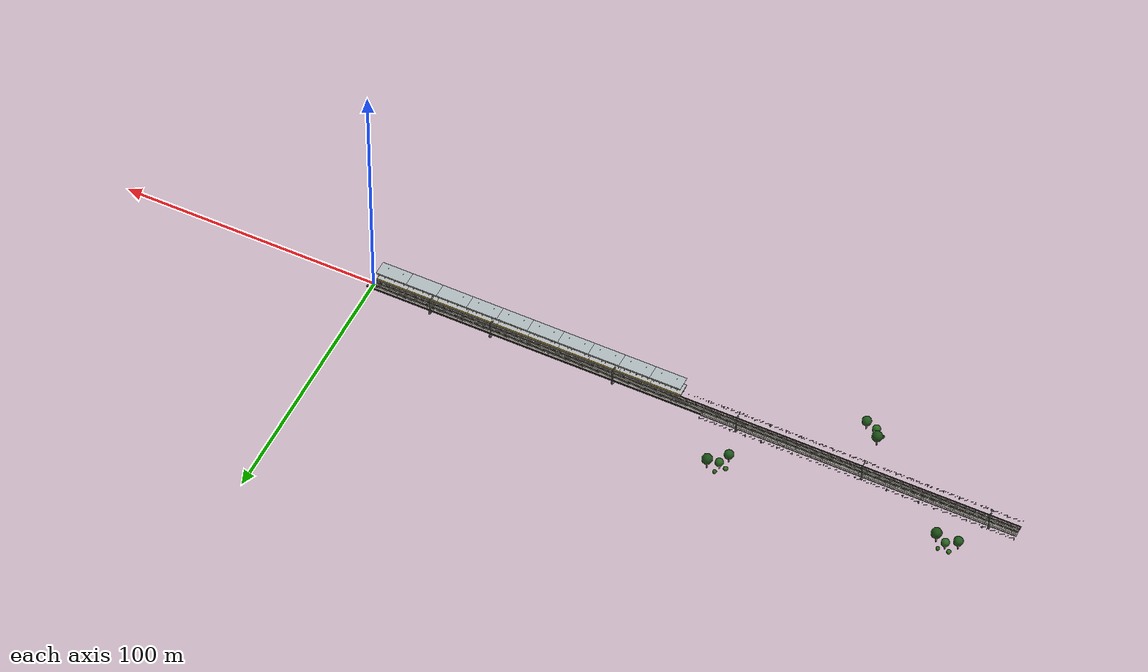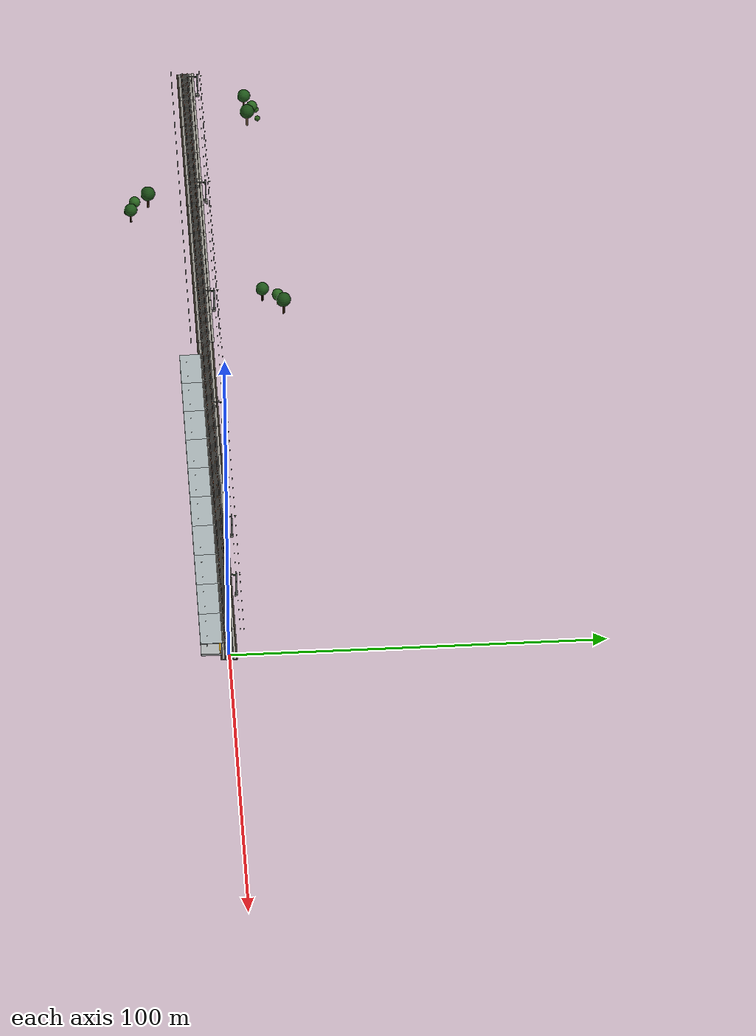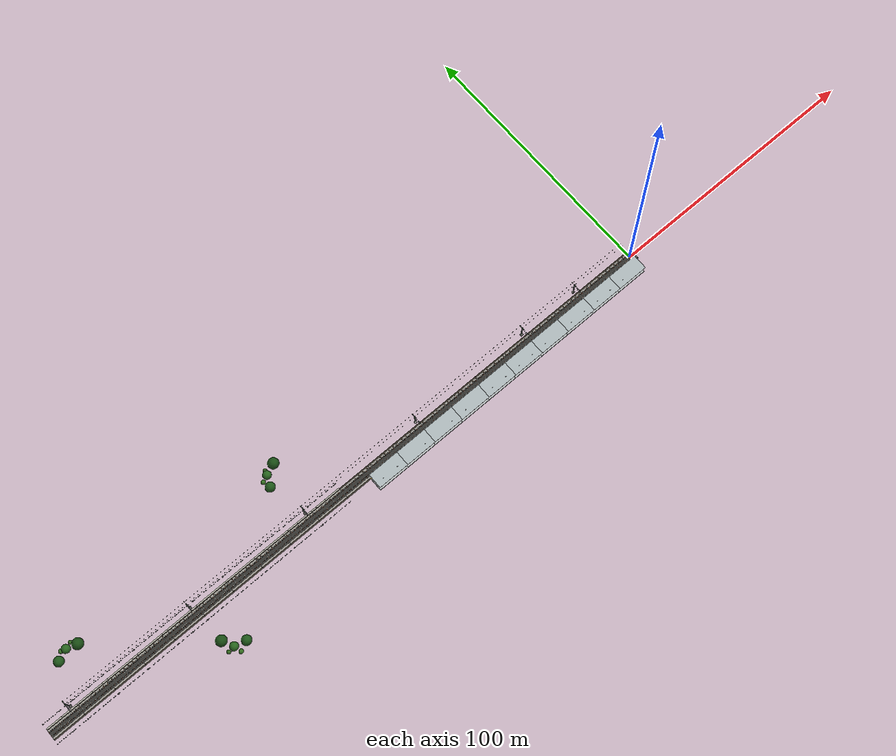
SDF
<sdf version="1.9">
 <world name="railway_environment">
  <include><uri>model://track_12m</uri><name>track_00</name><pose>-244 0 0 0 0 0</pose></include>
  <include><uri>model://track_12m</uri><name>track_01</name><pose>-232 0 0 0 0 0</pose></include>
  <include><uri>model://track_12m</uri><name>track_02</name><pose>-220 0 0 0 0 0</pose></include>
  <include><uri>model://track_12m</uri><name>track_03</name><pose>-208 0 0 0 0 0</pose></include>
  <include><uri>model://track_12m</uri><name>track_04</name><pose>-196 0 0 0 0 0</pose></include>
  <include><uri>model://track_12m</uri><name>track_05</name><pose>-184 0 0 0 0 0</pose></include>
  <include><uri>model://track_12m</uri><name>track_06</name><pose>-172 0 0 0 0 0</pose></include>
  <include><uri>model://track_12m</uri><name>track_07</name><pose>-160 0 0 0 0 0</pose></include>
  <include><uri>model://track_12m</uri><name>track_08</name><pose>-148 0 0 0 0 0</pose></include>
  <include><uri>model://track_12m</uri><name>track_09</name><pose>-136 0 0 0 0 0</pose></include>
  <include><uri>model://track_12m</uri><name>track_10</name><pose>-124 0 0 0 0 0</pose></include>
  <include><uri>model://track_12m</uri><name>track_11</name><pose>-112 0 0 0 0 0</pose></include>
  <include><uri>model://track_12m</uri><name>track_12</name><pose>-100 0 0 0 0 0</pose></include>
  <include><uri>model://track_12m</uri><name>track_13</name><pose>-88 0 0 0 0 0</pose></include>
  <include><uri>model://track_12m</uri><name>track_14</name><pose>-76 0 0 0 0 0</pose></include>
  <include><uri>model://track_12m</uri><name>track_15</name><pose>-64 0 0 0 0 0</pose></include>
  <include><uri>model://track_12m</uri><name>track_16</name><pose>-52 0 0 0 0 0</pose></include>
  <include><uri>model://track_12m</uri><name>track_17</name><pose>-40 0 0 0 0 0</pose></include>
  <include><uri>model://track_12m</uri><name>track_18</name><pose>-28 0 0 0 0 0</pose></include>
  <include><uri>model://track_12m</uri><name>track_19</name><pose>-16 0 0 0 0 0</pose></include>
  <include><uri>model://track_12m</uri><name>track_20</name><pose>-4 0 0 0 0 0</pose></include>
  <include><uri>model://catenary_span_96m</uri><name>ocs_tangent_00</name><pose>-192 0 0 0 0 0</pose></include>
  <include><uri>model://catenary_span_96m</uri><name>ocs_tangent_01</name><pose>-96 0 0 0 0 0</pose></include>
  <include><uri>model://catenary_span_24m</uri><name>ocs_tangent_02</name><pose>-36 0 0 0 0 0</pose></include>
  <include><uri>model://catenary_span_24m</uri><name>ocs_tangent_03</name><pose>-12 0 0 0 0 0</pose></include>
  <include>
   <uri>model://railside_infrastructure_12m</uri>
   <name>infra_00</name>
   <pose>-244 0 0 0 0 0</pose>
  </include>
  <include>
   <uri>model://railside_infrastructure_12m</uri>
   <name>infra_01</name>
   <pose>-232 0 0 0 0 0</pose>
  </include>
  <include>
   <uri>model://railside_infrastructure_12m</uri>
   <name>infra_02</name>
   <pose>-220 0 0 0 0 0</pose>
  </include>
  <include>
   <uri>model://railside_infrastructure_12m</uri>
   <name>infra_03</name>
   <pose>-208 0 0 0 0 0</pose>
  </include>
  <include>
   <uri>model://railside_infrastructure_12m</uri>
   <name>infra_04</name>
   <pose>-196 0 0 0 0 0</pose>
  </include>
  <include>
   <uri>model://railside_infrastructure_12m</uri>
   <name>infra_05</name>
   <pose>-184 0 0 0 0 0</pose>
  </include>
  <include>
   <uri>model://railside_infrastructure_12m</uri>
   <name>infra_06</name>
   <pose>-172 0 0 0 0 0</pose>
  </include>
  <include>
   <uri>model://railside_infrastructure_12m</uri>
   <name>infra_07</name>
   <pose>-160 0 0 0 0 0</pose>
  </include>
  <include>
   <uri>model://railside_infrastructure_12m</uri>
   <name>infra_08</name>
   <pose>-148 0 0 0 0 0</pose>
  </include>
  <include>
   <uri>model://railside_infrastructure_12m</uri>
   <name>infra_09</name>
   <pose>-136 0 0 0 0 0</pose>
  </include>
  <include><uri>model://station_platform_12m</uri><name>platform_00</name><pose>-114 0 0 0 0 0</pose></include>
  <include><uri>model://station_platform_12m</uri><name>platform_01</name><pose>-102 0 0 0 0 0</pose></include>
  <include><uri>model://station_platform_12m</uri><name>platform_02</name><pose>-90 0 0 0 0 0</pose></include>
  <include><uri>model://station_platform_12m</uri><name>platform_03</name><pose>-78 0 0 0 0 0</pose></include>
  <include><uri>model://station_platform_12m</uri><name>platform_04</name><pose>-66 0 0 0 0 0</pose></include>
  <include><uri>model://station_platform_12m</uri><name>platform_05</name><pose>-54 0 0 0 0 0</pose></include>
  <include><uri>model://station_platform_12m</uri><name>platform_06</name><pose>-42 0 0 0 0 0</pose></include>
  <include><uri>model://station_platform_12m</uri><name>platform_07</name><pose>-30 0 0 0 0 0</pose></include>
  <include><uri>model://station_platform_12m</uri><name>platform_08</name><pose>-18 0 0 0 0 0</pose></include>
  <include><uri>model://station_platform_12m</uri><name>platform_09</name><pose>-6 0 0 0 0 0</pose></include>
  <include>
   <uri>model://station_furniture</uri>
   <name>platform_furniture</name>
   <pose>-66 0 0 0 0 0</pose>
  </include>
  <include><uri>model://vegetation_cluster</uri><name>trees_00</name><pose>-230 17 0 0 0 0</pose></include>
  <include><uri>model://vegetation_cluster</uri><name>trees_01</name><pose>-188 -16 0 0 0 2.4</pose></include>
  <include><uri>model://vegetation_cluster</uri><name>trees_02</name><pose>-145 20 0 0 0 0.7</pose></include>
 </world>
</sdf>
